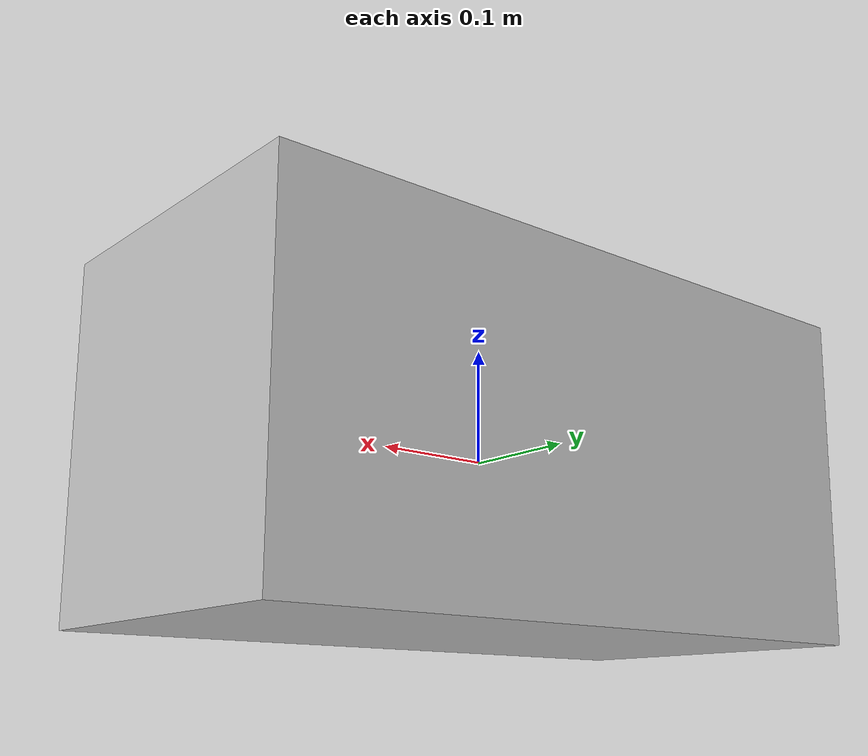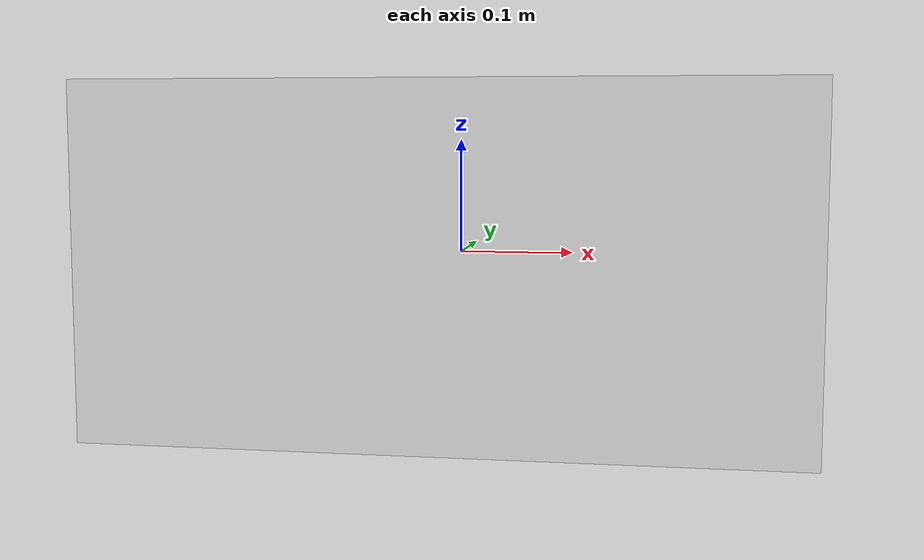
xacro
<?xml version="1.0"?>
<robot name="tortoisebot">
<link name="base_link">
<visual>
<geometry>
<box size="0.6 0.3 0.3"/>
</geometry>
<material name="silver">
<color rgba="0.75 0.75 0.75 1"/>
</material>
</visual>
</link>
</robot>
<link name="front_caster">
<visual>
<geometry>
<box size="0.1 0.1 0.3"/>
</geometry>
<material name="silver"/>
</visual>
</link>
<joint name="front_caster_joint" type="continuous">
<axis xyz="0 0 1"/>
<parent link="base_link"/>
<child link="front_caster"/>
<origin rpy="0 0 0" xyz="0.3 0 0"/>
</joint>
<link name="front_wheel">
<visual>
<geometry>
<cylinder length="0.05" radius="0.035"/>
</geometry>
<material name="black"/>
</visual>
</link>
<joint name="front_wheel_joint" type="continuous">
<axis xyz="0 0 1"/>
<parent link="front_caster"/>
<child link="front_wheel"/>
<origin rpy="-1.5708 0 0" xyz="0.05 0 -.15"/>
</joint>
<link name="right_wheel">
<visual>
<geometry>
<cylinder length="0.05" radius="0.035"/>
</geometry>
<material name="black">
<color rgba="0 0 0 1"/>
</material>
</visual>
</link>
<joint name="right_wheel_joint" type="continuous">
<axis xyz="0 0 1"/>
<parent link="base_link"/>
<child link="right_wheel"/>
<origin rpy="-1.5708 0 0" xyz="-0.2825 -0.125 -.15"/>
</joint>
<link name="left_wheel">
<visual>
<geometry>
<cylinder length="0.05" radius="0.035"/>
</geometry>
<material name="black"/>
</visual>
</link>
<joint name="left_wheel_joint" type="continuous">
<axis xyz="0 0 1"/>
<parent link="base_link"/>
<child link="left_wheel"/>
<origin rpy="-1.5708 0 0" xyz="-0.2825 0.125 -.15"/>
</joint>
